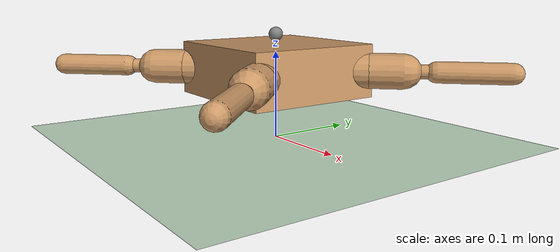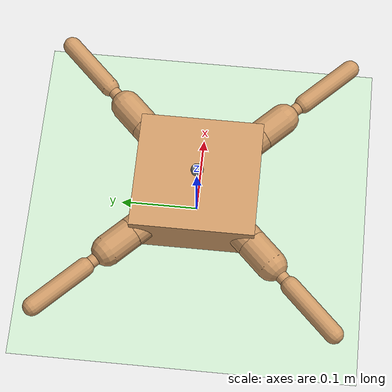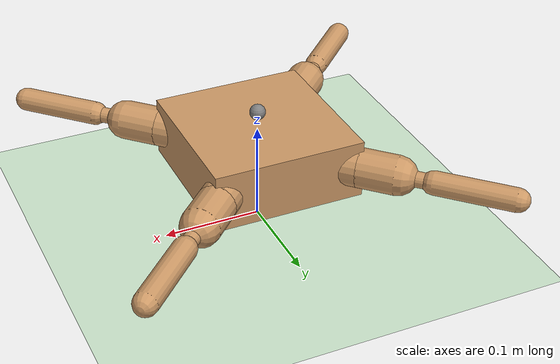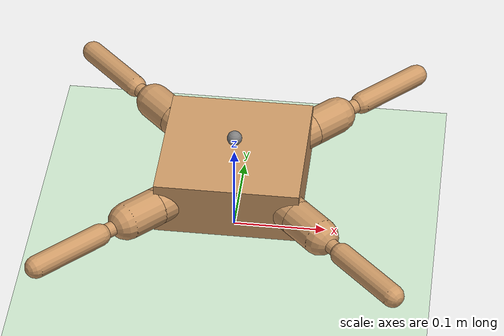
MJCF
<mujoco model="ant">
  <compiler angle="radian" coordinate="local" inertiafromgeom="true"/>
  <option integrator="RK4" timestep="0.01"/>
  <custom>
    <numeric data="0.0 0.0 0.08 1.0 0.0 0.0 0.0 0.0 0.0 1.0 0.0 0.0 -1.0 0.0 0.0 -1.0 0.0 0.0 1.0" name="init_qpos"/>
  </custom>
  <default>
    <joint armature="1" damping="1" limited="true"/>
    <geom conaffinity="0" condim="3" density="5.0" friction="1 0.5 0.5" margin="0.01" rgba="0.8 0.6 0.4 1"/>
  </default>
  <asset>
    <texture builtin="gradient" height="100" rgb1="1 1 1" rgb2="0 0 0" type="skybox" width="100"/>
    <texture builtin="flat" height="1278" mark="cross" markrgb="1 1 1" name="texgeom" random="0.01" rgb1="0.8 0.6 0.4" rgb2="0.8 0.6 0.4" type="cube" width="127"/>
    <texture builtin="checker" height="100" name="texplane" rgb1="0 0 0" rgb2="0.8 0.8 0.8" type="2d" width="100"/>
    <material name="MatPlane" reflectance="0.5" shininess="1" specular="1" texrepeat="60 60" texture="texplane"/>
    <material name="geom" texture="texgeom" texuniform="true"/>
  </asset>
  <worldbody>
    <light cutoff="100" diffuse="1 1 1" dir="-0 0 -1.3" directional="true" exponent="1" pos="0 0 1.3" specular=".1 .1 .1"/>
    <geom conaffinity="1" condim="3" material="MatPlane" name="floor" pos="0 0 0" rgba="0.8 0.9 0.8 1" size="40 40 40" type="plane"/>
    <body name="torso" pos="0 0 0.08">
      <camera name="track" mode="trackcom" pos="0 -3 0.3" xyaxes="1 0 0 0 0 1"/>
      <camera name="esp32cam" mode="fixed" pos="0.077 0.0 0.0" xyaxes="1 0 0 0 0 1"/>
      <geom name="torso_geom" pos="0 0 0" size="0.077 0.078 0.03" type="box"/>
      <joint armature="0" damping="0" limited="false" margin="0.01" name="root" pos="0 0 0" type="free"/>
      <site name='imu' size='0.008' pos='0.0 0.0 0.04'/>
      <body name="front_left_leg" pos="0 0 0">
        <geom fromto="0.0 0.0 0.0 0.075 0.075 0.0" name="leg_1_geom" size="0.020" type="capsule"/>
        <body name="femur_1" pos="0.075 0.075 0">
          <joint axis="0 0 1" name="hip_1" pos="0.0 0.0 0.0" range="-1.0471 1.0471" type="hinge"/>
          <geom fromto="0.0 0.0 0.0 0.027 0.027 0.0" name="femur_1_geom" size="0.020" type="capsule"/>
          <body name="tibia_1" pos="0.027 0.027 0">
            <joint axis="-1 1 0" name="knee_1" pos="0.0 0.0 0.0" range="-1.0471 1.0471" type="hinge"/>
            <geom fromto="0.0 0.0 0.0 0.025 0.025 0.0" name="tibia_1_geom" size="0.008" type="capsule"/>
            <body name="tarsus_1" pos="0.025 0.025 0.0">
              <joint axis="-1 1 0" name="ankle_1" pos="0.0 0.0 0.0" range="1.2217 2.2094" type="hinge"/>
              <geom fromto="0.0 0.0 0.0 0.057 0.057 0.0" name="tarsus_1_geom" size="0.012" type="capsule"/>
            </body>
          </body>
        </body>
      </body>
      <body name="front_right_leg" pos="0 0 0">
        <geom fromto="0.0 0.0 0.0 -0.075 0.075 0.0" name="leg_2_geom" size="0.020" type="capsule"/>
        <body name="femur_2" pos="-0.075 0.075 0">
          <joint axis="0 0 1" name="hip_2" pos="0.0 0.0 0.0" range="-1.0471 1.0471" type="hinge"/>
          <geom fromto="0.0 0.0 0.0 -0.027 0.027 0.0" name="femur_2_geom" size="0.020" type="capsule"/>
          <body name="tibia_2" pos="-0.027 0.027 0">
            <joint axis="1 1 0" name="knee_2" pos="0.0 0.0 0.0" range="-1.0471 1.0471" type="hinge"/>
            <geom fromto="0.0 0.0 0.0 -0.025 0.025 0.0" name="tibia_2_geom" size="0.008" type="capsule"/>
            <body name="tarsus_2" pos="-0.025 0.025 00">
              <joint axis="1 1 0" name="ankle_2" pos="0.0 0.0 0.0" range="-2.2094 -1.2217" type="hinge"/>
              <geom fromto="0.0 0.0 0.0 -0.057 0.057 0.0" name="tarsus_2_geom" size="0.012" type="capsule"/>
            </body>
          </body>
        </body>
      </body>
      <body name="back_right_leg" pos="0 0 0">
        <geom fromto="0.0 0.0 0.0 -0.075 -0.075 0.0" name="leg_3_geom" size="0.020" type="capsule"/>
        <body name="femur_3" pos="-0.075 -0.075 0">
          <joint axis="0 0 1" name="hip_3" pos="0.0 0.0 0.0" range="-1.0471 1.0471" type="hinge"/>
          <geom fromto="0.0 0.0 0.0 -0.027 -0.027 0.0" name="femur_3_geom" size="0.020" type="capsule"/>
          <body name="tibia_3" pos="-0.027 -0.027 0">
            <joint axis="-1 1 0" name="knee_3" pos="0.0 0.0 0.0" range="-1.0471 1.0471" type="hinge"/>
            <geom fromto="0.0 0.0 0.0 -0.025 -0.025 0.0" name="tibia_3_geom" size="0.008" type="capsule"/>
            <body name="tarsus_3" pos="-0.025 -0.025 0.0">
              <joint axis="-1 1 0" name="ankle_3" pos="0.0 0.0 0.0" range="-2.2094 -1.2217" type="hinge"/>
              <geom fromto="0.0 0.0 0.0 -0.057 -0.057 0.0" name="tarsus_3_geom" size="0.012" type="capsule"/>
            </body>
          </body>
        </body>
      </body>
      <body name="back_left_leg" pos="0 0 0">
        <geom fromto="0.0 0.0 0.0 0.075 -0.075 0.0" name="leg_4_geom" size="0.020" type="capsule"/>
        <body name="femur_4" pos="0.075 -0.075 0">
          <joint axis="0 0 1" name="hip_4" pos="0.0 0.0 0.0" range="-1.0471 1.0471" type="hinge"/>
          <geom fromto="0.0 0.0 0.0 0.027 -0.027 0.0" name="femur_4_geom" size="0.020" type="capsule"/>
          <body name="tibia_4" pos="0.027 -0.027 0">
            <joint axis="1 1 0" name="knee_4" pos="0.0 0.0 0.0" range="-1.0471 1.0471" type="hinge"/>
            <geom fromto="0.0 0.0 0.0 0.025 -0.025 0.0" name="tibia_4_geom" size="0.008" type="capsule"/>
            <body name="tarsus_4" pos="0.025 -0.025 0.0">
              <joint axis="1 1 0" name="ankle_4" pos="0.0 0.0 0.0" range="1.2217 2.2094" type="hinge"/>
              <geom fromto="0.0 0.0 0.0 0.057 -0.057 0.0" name="tarsus_geom" size="0.012" type="capsule"/>
            </body>
          </body>
        </body>
      </body>
    </body>
  </worldbody>
  <sensor>
    <gyro name='gyro' site='imu' noise='5e-4' cutoff='34.9'/>
    <accelerometer name='acc' site='imu' noise='1e-2' cutoff='157'/>
  </sensor>
  <actuator>
    <position ctrllimited="true" ctrlrange="-2 2" joint="hip_1" gear="1" kp="60"/>
    <position ctrllimited="true" ctrlrange="-2 2" joint="knee_1" gear="1" kp="60"/>
    <position ctrllimited="true" ctrlrange="-2 2" joint="ankle_1" gear="1" kp="60"/>
    <position ctrllimited="true" ctrlrange="-2 1" joint="hip_2" gear="1" kp="60"/>
    <position ctrllimited="true" ctrlrange="-2 2" joint="knee_2" gear="1" kp="60"/>
    <position ctrllimited="true" ctrlrange="-2 2" joint="ankle_2" gear="1" kp="60"/>
    <position ctrllimited="true" ctrlrange="-2 2" joint="hip_3" gear="1" kp="60"/>
    <position ctrllimited="true" ctrlrange="-2 2" joint="knee_3" gear="1" kp="60"/>
    <position ctrllimited="true" ctrlrange="-2 2" joint="ankle_3" gear="1" kp="60"/>
    <position ctrllimited="true" ctrlrange="-2 2" joint="hip_4" gear="1" kp="60"/>
    <position ctrllimited="true" ctrlrange="-2 2" joint="knee_4" gear="1" kp="60"/>
    <position ctrllimited="true" ctrlrange="-2 2" joint="ankle_4" gear="1" kp="60"/>

  </actuator>
</mujoco>
